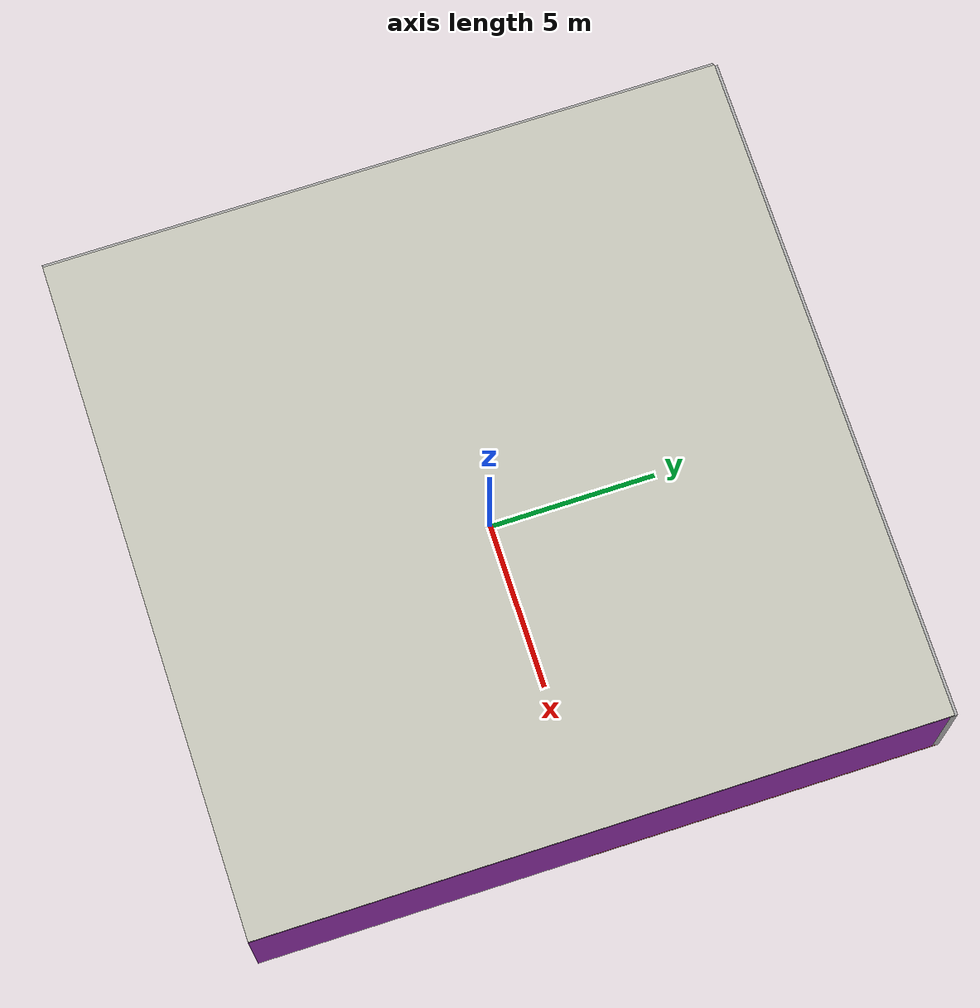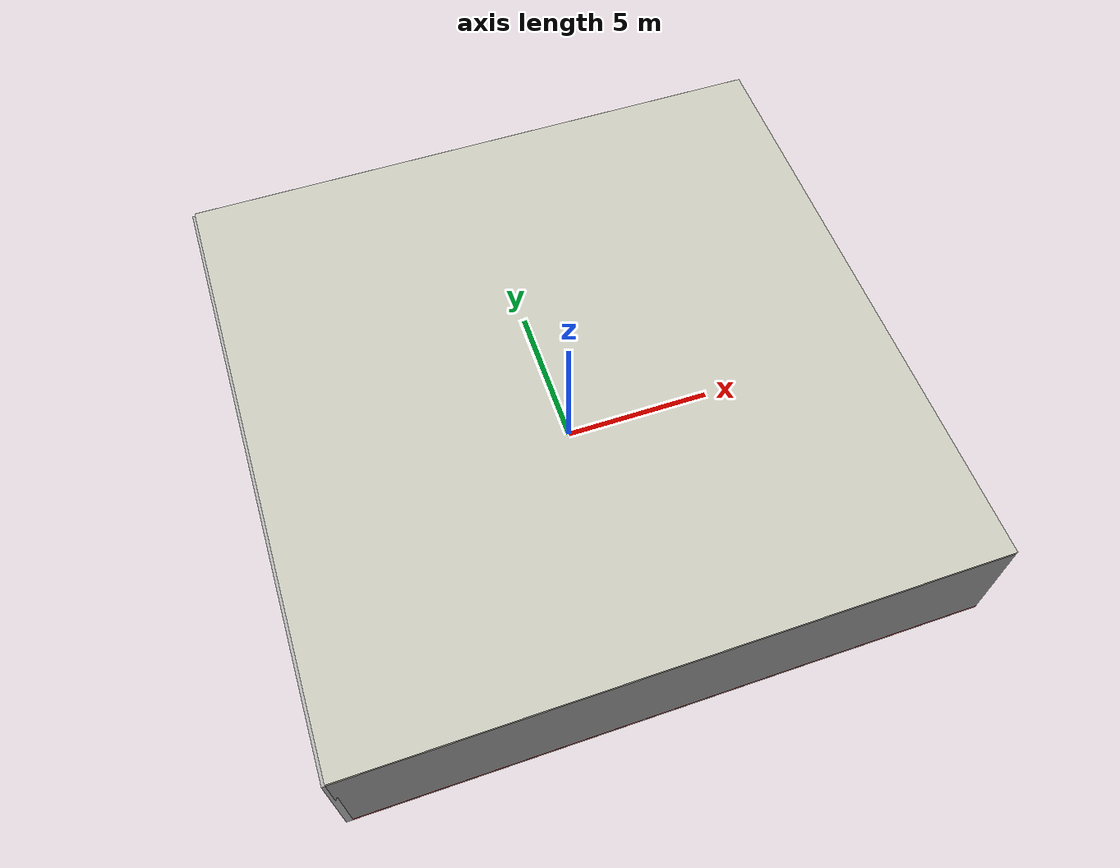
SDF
<sdf version="1.4">
 <world name="default">
  <physics type="ode">
   <max_step_size>0.001</max_step_size>
   <real_time_factor>1</real_time_factor>
   <real_time_update_rate>1000</real_time_update_rate>
   <gravity>0 0 -9.8</gravity>
  </physics>
  <scene><ambient>0.4 0.4 0.4 1</ambient><background>0.7 0.7 0.7 1</background><shadows>1</shadows></scene>
  <model name="Surrounding">
   <static>1</static>
   <link name="Ceiling">
    <collision name="Ceiling_Collision"><geometry><box><size>20 20 0.1</size></box></geometry></collision>
    <visual name="Ceiling_Visual">
     <geometry><box><size>20 20 0.1</size></box></geometry>
     <material>
      <script><uri>file://media/materials/scripts/gazebo.material</uri><name>Gazebo/PaintedWall</name></script>
     </material>
    </visual>
    <pose>0 0 4.05 0 0 0</pose>
   </link>
   <link name="Wall_South">
    <collision name="Wall_South_Collision">
     <geometry><box><size>20 0 4</size></box></geometry>
     <pose>0 0 2 0 -0 0</pose>
    </collision>
    <visual name="Wall_South_Visual">
     <pose>0 0 2 0 -0 0</pose>
     <geometry><box><size>20 0 4</size></box></geometry>
     <material>
      <script><uri>file://media/materials/scripts/gazebo.material</uri><name>Gazebo/GreyGradientSky</name></script>
     </material>
    </visual>
    <velocity_decay><linear>0</linear><angular>0</angular></velocity_decay>
    <pose>0 -10 0 0 -0 0</pose>
   </link>
   <link name="Wall_East">
    <collision name="Wall_21_Collision">
     <geometry><box><size>20 0 4</size></box></geometry>
     <pose>0 0 2 0 -0 0</pose>
    </collision>
    <visual name="Wall_21_Visual">
     <pose>0 0 2 0 -0 0</pose>
     <geometry><box><size>20 0 4</size></box></geometry>
     <material>
      <script><uri>file://media/materials/scripts/gazebo.material</uri><name>Gazebo/PurpleGlow</name></script>
     </material>
    </visual>
    <velocity_decay><linear>0</linear><angular>0</angular></velocity_decay>
    <pose>10 0 0 0 -0 1.5708</pose>
   </link>
   <link name="Wall_North">
    <collision name="Wall_22_Collision">
     <geometry><box><size>20 0.2 4</size></box></geometry>
     <pose>0 0 2 0 -0 0</pose>
    </collision>
    <visual name="Wall_22_Visual">
     <pose>0 0 2 0 -0 0</pose>
     <geometry><box><size>20 0.2 4</size></box></geometry>
     <material>
      <script><uri>file://media/materials/scripts/gazebo.material</uri><name>Gazebo/PioneerBody</name></script>
     </material>
    </visual>
    <velocity_decay><linear>0</linear><angular>0</angular></velocity_decay>
    <pose>0 10 0 0 -0 0</pose>
   </link>
   <link name="Wall_West">
    <collision name="Wall_23_Collision">
     <geometry><box><size>20 0.2 4</size></box></geometry>
     <pose>0 0 2 0 -0 0</pose>
    </collision>
    <visual name="Wall_23_Visual">
     <pose>0 0 2 0 -0 0</pose>
     <geometry><box><size>20 0.2 4</size></box></geometry>
     <material>
      <script><uri>file://media/materials/scripts/gazebo.material</uri><name>Gazebo/JointAnchor</name></script>
     </material>
    </visual>
    <velocity_decay><linear>0</linear><angular>0</angular></velocity_decay>
    <pose>-10 0 0 0 0 -1.5708</pose>
   </link>
   <link name="Ground_link">
    <collision name="collision">
     <pose>0 0 .05 0 -0 0</pose>
     <geometry><box><size>20 20 0.1</size></box></geometry>
    </collision>
    <visual name="visual">
     <pose>0 0 .05 0 -0 0</pose>
     <geometry><box><size>20 20 0.1</size></box></geometry>
     <material>
      <script><uri>file://media/materials/scripts/gazebo.material</uri><name>Gazebo/RedGlow</name></script>
     </material>
    </visual>
   </link>
   <static>1</static>
  </model>
  <spherical_coordinates>
   <surface_model>EARTH_WGS84</surface_model>
   <latitude_deg>0</latitude_deg>
   <longitude_deg>0</longitude_deg>
   <elevation>0</elevation>
   <heading_deg>0</heading_deg>
  </spherical_coordinates>
  <light name="lightball_0" type="diffuse">
   <diffuse>0.8 0.8 0.8 1</diffuse>
   <specular>0.2 0.2 0.2 1</specular>
   <attenuation>
    <range>100</range>
    <constant>0.7</constant>
    <linear>0.01</linear>
    <quadratic>0.001</quadratic>
   </attenuation>
   <direction>-0.5 0.1 -0.9</direction>
   <pose>6.60635475391 -5.00258158838 1.751798584 0 0 0</pose>
  </light>
  <light name="lightball_1" type="diffuse">
   <diffuse>0.8 0.8 0.8 1</diffuse>
   <specular>0.2 0.2 0.2 1</specular>
   <attenuation>
    <range>100</range>
    <constant>0.7</constant>
    <linear>0.01</linear>
    <quadratic>0.001</quadratic>
   </attenuation>
   <direction>-0.5 0.1 -0.9</direction>
   <pose>-7.86373573731 -9.62836530758 3.6028023357 0 0 0</pose>
  </light>
  <light name="lightball_2" type="diffuse">
   <diffuse>0.8 0.8 0.8 1</diffuse>
   <specular>0.2 0.2 0.2 1</specular>
   <attenuation>
    <range>100</range>
    <constant>0.7</constant>
    <linear>0.01</linear>
    <quadratic>0.001</quadratic>
   </attenuation>
   <direction>-0.5 0.1 -0.9</direction>
   <pose>-4.78816496217 -3.3347068833 2.57258109089 0 0 0</pose>
  </light>
  <light name="lightball_3" type="diffuse">
   <diffuse>0.8 0.8 0.8 1</diffuse>
   <specular>0.2 0.2 0.2 1</specular>
   <attenuation>
    <range>100</range>
    <constant>0.7</constant>
    <linear>0.01</linear>
    <quadratic>0.001</quadratic>
   </attenuation>
   <direction>-0.5 0.1 -0.9</direction>
   <pose>-8.34695572088 7.33924939166 1.12016808595 0 0 0</pose>
  </light>
  <light name="lightball_4" type="diffuse">
   <diffuse>0.8 0.8 0.8 1</diffuse>
   <specular>0.2 0.2 0.2 1</specular>
   <attenuation>
    <range>100</range>
    <constant>0.7</constant>
    <linear>0.01</linear>
    <quadratic>0.001</quadratic>
   </attenuation>
   <direction>-0.5 0.1 -0.9</direction>
   <pose>-4.65778533854 -6.97823269509 0.960225483785 0 0 0</pose>
  </light>
  <include>
   <uri>model://robocup_3Dsim_goal</uri>
   <pose>-8.19196555647 -2.15319882548 0 0 0 0.533606340603</pose>
  </include>
  <include><uri>model://table</uri><pose>-4.02301988383 1.4650184267 0 0 0 0.462547100685</pose></include>
  <include>
   <uri>model://textured_shapes</uri>
   <pose>-4.08725723804 7.75586757394 0 0 0 1.85417649179</pose>
  </include>
  <include><uri>model://cabinet</uri><pose>3.7619804313 -3.78085562646 0 0 0 2.74332134505</pose></include>
  <include>
   <uri>model://construction_cone</uri>
   <pose>8.13602547702 8.02806228766 0 0 0 2.10772807638</pose>
  </include>
 </world>
</sdf>

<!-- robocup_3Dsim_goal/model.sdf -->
<sdf version="1.5">
  <model name="robocup_3d_goal">
    <static>true</static>
    <link name="left_post">
      <pose>0 1.05 0.45 0 0 0</pose>
      <collision name="collision">
        <geometry>
          <cylinder>
            <radius>0.05</radius>
            <length>0.9</length>
          </cylinder>
        </geometry>
      </collision>
      <visual name="visual">
        <geometry>
          <cylinder>
            <radius>0.05</radius>
            <length>0.9</length>
          </cylinder>
        </geometry>
        <material>
          <script>
            <uri>file://media/materials/scripts/gazebo.material</uri>
            <name>Gazebo/ZincYellow</name>
          </script>
        </material>
      </visual>
    </link>
    <link name="left_support_horiz_lower">
      <pose>0.30 1.05 0.01 0 0 0</pose>
      <collision name="collision">
        <geometry>
          <box>
            <size>0.50 0.02 0.02</size>
          </box>
        </geometry>
      </collision>
      <visual name="visual">
        <geometry>
          <box>
            <size>0.50 0.02 0.02</size>
          </box>
        </geometry>
        <material>
          <script>
            <uri>file://media/materials/scripts/gazebo.material</uri>
            <name>Gazebo/White</name>
          </script>
        </material>
      </visual>
    </link>
    <link name="left_support_horiz_upper">
      <pose>0.30 1.05 0.79 0 0 0</pose>
      <collision name="collision">
        <geometry>
          <box>
            <size>0.50 0.02 0.02</size>
          </box>
        </geometry>
      </collision>
      <visual name="visual">
        <geometry>
          <box>
            <size>0.50 0.02 0.02</size>
          </box>
        </geometry>
        <material>
          <script>
            <uri>file://media/materials/scripts/gazebo.material</uri>
            <name>Gazebo/White</name>
          </script>
        </material>
      </visual>
    </link>
    <link name="left_support_vertical">
      <pose>0.56 1.05 0.4 0 1.5708 0</pose>
      <collision name="collision">
        <geometry>
          <box>
            <size>0.80 0.02 0.02</size>
          </box>
        </geometry>
      </collision>
      <visual name="visual">
        <geometry>
          <box>
            <size>0.80 0.02 0.02</size>
          </box>
        </geometry>
        <material>
          <script>
            <uri>file://media/materials/scripts/gazebo.material</uri>
            <name>Gazebo/White</name>
          </script>
        </material>
      </visual>
    </link>
    <link name="right_support_horiz_lower">
      <pose>0.30 -1.05 0.01 0 0 0</pose>
      <collision name="collision">
        <geometry>
          <box>
            <size>0.50 0.02 0.02</size>
          </box>
        </geometry>
      </collision>
      <visual name="visual">
        <geometry>
          <box>
            <size>0.50 0.02 0.02</size>
          </box>
        </geometry>
        <material>
          <script>
            <uri>file://media/materials/scripts/gazebo.material</uri>
            <name>Gazebo/White</name>
          </script>
        </material>
      </visual>
    </link>
    <link name="right_support_horiz_upper">
      <pose>0.30 -1.05 0.79 0 0 0</pose>
      <collision name="collision">
        <geometry>
          <box>
            <size>0.50 0.02 0.02</size>
          </box>
        </geometry>
      </collision>
      <visual name="visual">
        <geometry>
          <box>
            <size>0.50 0.02 0.02</size>
          </box>
        </geometry>
        <material>
          <script>
            <uri>file://media/materials/scripts/gazebo.material</uri>
            <name>Gazebo/White</name>
          </script>
        </material>
      </visual>
    </link>
    <link name="right_support_vertical">
      <pose>0.56 -1.05 0.4 0 1.5708 0</pose>
      <collision name="collision">
        <geometry>
          <box>
            <size>0.80 0.02 0.02</size>
          </box>
        </geometry>
      </collision>
      <visual name="visual">
        <geometry>
          <box>
            <size>0.80 0.02 0.02</size>
          </box>
        </geometry>
        <material>
          <script>
            <uri>file://media/materials/scripts/gazebo.material</uri>
            <name>Gazebo/White</name>
          </script>
        </material>
      </visual>
    </link>
    <link name="center_support_horiz_lower">
      <pose>0.56 0 0.01 0 1.5708 0</pose>
      <collision name="collision">
        <geometry>
          <box>
            <size>0.02 2.08 0.02</size>
          </box>
        </geometry>
      </collision>
      <visual name="visual">
        <geometry>
          <box>
            <size>0.02 2.08 0.02</size>
          </box>
        </geometry>
        <material>
          <script>
            <uri>file://media/materials/scripts/gazebo.material</uri>
            <name>Gazebo/White</name>
          </script>
        </material>
      </visual>
    </link>
    <link name="center_support_horiz_upper">
      <pose>0.56 0 0.79 0 1.5708 0</pose>
      <collision name="collision">
        <geometry>
          <box>
            <size>0.02 2.08 0.02</size>
          </box>
        </geometry>
      </collision>
      <visual name="visual">
        <geometry>
          <box>
            <size>0.02 2.08 0.02</size>
          </box>
        </geometry>
        <material>
          <script>
            <uri>file://media/materials/scripts/gazebo.material</uri>
            <name>Gazebo/White</name>
          </script>
        </material>
      </visual>
    </link>
    <link name="right_post">
      <pose>0 -1.05 0.45 0 0 0</pose>
      <collision name="collision">
        <geometry>
          <cylinder>
            <radius>0.05</radius>
            <length>0.9</length>
          </cylinder>
        </geometry>
      </collision>
      <visual name="visual">
        <geometry>
          <cylinder>
            <radius>0.05</radius>
            <length>0.9</length>
          </cylinder>
        </geometry>
        <material>
          <script>
            <uri>file://media/materials/scripts/gazebo.material</uri>
            <name>Gazebo/ZincYellow</name>
          </script>
        </material>
      </visual>
    </link>
    <link name="crossbar">
      <pose>0 0 0.85 1.57 1.57 0</pose>
      <collision name="collision">
        <geometry>
          <cylinder>
            <radius>0.05</radius>
            <length>2.0</length>
          </cylinder>
        </geometry>
      </collision>
      <visual name="visual">
        <geometry>
          <cylinder>
            <radius>0.05</radius>
            <length>2.0</length>
          </cylinder>
        </geometry>
        <material>
          <script>
            <uri>file://media/materials/scripts/gazebo.material</uri>
            <name>Gazebo/ZincYellow</name>
          </script>
        </material>
      </visual>
    </link>
    <link name="center_net">
      <pose>0.56 0 0.40 0 0 0</pose>
      <collision name="collision">
        <geometry>
          <box>
            <size>0.01 2.1 0.80</size>
          </box>
        </geometry>
      </collision>
      <visual name="visual">
        <geometry>
          <box>
            <size>0.01 2.1 0.80</size>
          </box>
        </geometry>
        <material>
          <script>
            <uri>model://../model_source/models/robocup09_spl_field/materials/scripts/</uri>
            <uri>model://../model_source/models/robocup09_spl_field/materials/textures/</uri>
            <name>RoboCup/Net</name>
          </script>
        </material>
      </visual>
    </link>
    <link name="left_net">
      <pose>0.30 1.05 0.40 0 0 0</pose>
      <collision name="collision">
        <geometry>
          <box>
            <size>0.50 0.01 0.76</size>
          </box>
        </geometry>
      </collision>
      <visual name="visual">
        <geometry>
          <box>
            <size>0.50 0.01 0.76</size>
          </box>
        </geometry>
        <material>
          <script>
            <uri>model://../model_source/models/robocup09_spl_field/materials/scripts/</uri>
            <uri>model://../model_source/models/robocup09_spl_field/materials/textures/</uri>
            <name>RoboCup/Net</name>
          </script>
        </material>
      </visual>
    </link>
    <link name="right_net">
      <pose>0.30 -1.05 0.40 0 0 0</pose>
      <collision name="collision">
        <geometry>
          <box>
            <size>0.50 0.01 0.76</size>
          </box>
        </geometry>
      </collision>
      <visual name="visual">
        <geometry>
          <box>
            <size>0.50 0.01 0.76</size>
          </box>
        </geometry>
        <material>
          <script>
            <uri>model://../model_source/models/robocup09_spl_field/materials/scripts/</uri>
            <uri>model://../model_source/models/robocup09_spl_field/materials/textures/</uri>
            <name>RoboCup/Net</name>
          </script>
        </material>
      </visual>
    </link>
  </model>
</sdf>

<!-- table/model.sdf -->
<sdf version="1.5">
  <model name="table">
    <static>true</static>
    <link name="link">
      <collision name="surface">
        <pose>0 0 1.0 0 0 0</pose>
        <geometry>
          <box>
            <size>1.5 0.8 0.03</size>
          </box>
        </geometry>
        <surface>
          <friction>
            <ode>
              <mu>0.6</mu>
              <mu2>0.6</mu2>
            </ode>
          </friction>
        </surface>
      </collision>
      <visual name="visual1">
        <pose>0 0 1.0 0 0 0</pose>
        <geometry>
          <box>
            <size>1.5 0.8 0.03</size>
          </box>
        </geometry>
        <material>
          <script>
            <uri>model://media/materials/scripts/gazebo.material</uri>
            <name>Gazebo/Wood</name>
          </script>
        </material>
      </visual>
      <collision name="front_left_leg">
        <pose>0.68 0.38 0.5 0 0 0</pose>
        <geometry>
          <cylinder>
            <radius>0.02</radius>
            <length>1.0</length>
          </cylinder>
        </geometry>
      </collision>
      <visual name="front_left_leg">
        <pose>0.68 0.38 0.5 0 0 0</pose>
        <geometry>
          <cylinder>
            <radius>0.02</radius>
            <length>1.0</length>
          </cylinder>
        </geometry>
        <material>
          <script>
            <uri>model://media/materials/scripts/gazebo.material</uri>
            <name>Gazebo/Grey</name>
          </script>
        </material>
      </visual>
      <collision name="front_right_leg">
        <pose>0.68 -0.38 0.5 0 0 0</pose>
        <geometry>
          <cylinder>
            <radius>0.02</radius>
            <length>1.0</length>
          </cylinder>
        </geometry>
      </collision>
      <visual name="front_right_leg">
        <pose>0.68 -0.38 0.5 0 0 0</pose>
        <geometry>
          <cylinder>
            <radius>0.02</radius>
            <length>1.0</length>
          </cylinder>
        </geometry>
        <material>
          <script>
            <uri>model://media/materials/scripts/gazebo.material</uri>
            <name>Gazebo/Grey</name>
          </script>
        </material>
      </visual>
      <collision name="back_right_leg">
        <pose>-0.68 -0.38 0.5 0 0 0</pose>
        <geometry>
          <cylinder>
            <radius>0.02</radius>
            <length>1.0</length>
          </cylinder>
        </geometry>
      </collision>
      <visual name="back_right_leg">
        <pose>-0.68 -0.38 0.5 0 0 0</pose>
        <geometry>
          <cylinder>
            <radius>0.02</radius>
            <length>1.0</length>
          </cylinder>
        </geometry>
        <material>
          <script>
            <uri>model://media/materials/scripts/gazebo.material</uri>
            <name>Gazebo/Grey</name>
          </script>
        </material>
      </visual>
      <collision name="back_left_leg">
        <pose>-0.68 0.38 0.5 0 0 0</pose>
        <geometry>
          <cylinder>
            <radius>0.02</radius>
            <length>1.0</length>
          </cylinder>
        </geometry>
      </collision>
      <visual name="back_left_leg">
        <pose>-0.68 0.38 0.5 0 0 0</pose>
        <geometry>
          <cylinder>
            <radius>0.02</radius>
            <length>1.0</length>
          </cylinder>
        </geometry>
        <material>
          <script>
            <uri>model://media/materials/scripts/gazebo.material</uri>
            <name>Gazebo/Grey</name>
          </script>
        </material>
      </visual>
    </link>
  </model>
</sdf>

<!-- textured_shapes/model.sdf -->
<sdf version="1.6">
  <model name="textured_shapes">
    <pose>0 0 0.5 0 0 0</pose>
    <link name="box">
      <pose>0 -1.5 0 0 0 0</pose>
      <collision name="collision">
        <geometry>
          <box>
            <size>1 1 1</size>
          </box>
        </geometry>
      </collision>
      <visual name="visual">
        <geometry>
          <box>
            <size>1 1 1</size>
          </box>
        </geometry>
        <material>
          <script>
            <uri>model://../model_source/models/textured_shapes/materials/scripts</uri>
            <uri>model://../model_source/models/textured_shapes/materials/textures</uri>
            <name>TexturedShape/Squares</name>
          </script>
        </material>
      </visual>
    </link>
    <link name="sphere">
      <collision name="collision">
        <geometry>
          <sphere>
            <radius>0.5</radius>
          </sphere>
        </geometry>
      </collision>
      <visual name="visual">
        <geometry>
          <sphere>
            <radius>0.5</radius>
          </sphere>
        </geometry>
        <material>
          <script>
            <uri>model://../model_source/models/textured_shapes/materials/scripts</uri>
            <uri>model://../model_source/models/textured_shapes/materials/textures</uri>
            <name>TexturedShape/Squares</name>
          </script>
        </material>
      </visual>
    </link>
    <link name="cylinder">
      <pose>0 1.5 0 0 0 0</pose>
      <collision name="collision">
        <geometry>
          <cylinder>
            <radius>0.5</radius>
            <length>1</length>
          </cylinder>
        </geometry>
      </collision>
      <visual name="visual">
        <geometry>
          <cylinder>
            <radius>0.5</radius>
            <length>1</length>
          </cylinder>
        </geometry>
        <material>
          <script>
            <uri>model://../model_source/models/textured_shapes/materials/scripts</uri>
            <uri>model://../model_source/models/textured_shapes/materials/textures</uri>
            <name>TexturedShape/Squares</name>
          </script>
        </material>
      </visual>
    </link>
  </model>
</sdf>

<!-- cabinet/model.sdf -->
<sdf version="1.5">
  <model name="cabinet">
    <static>true</static>
    <link name="cabinet_bottom_plate">
      <inertial>
        <pose>0 0 -1 0 0 0</pose>
        <inertia>
          <ixx>2.050000</ixx>
          <ixy>0</ixy>
          <ixz>0</ixz>
          <iyy>2.050000</iyy>
          <iyz>0</iyz>
          <izz>2.050000</izz>
        </inertia>
        <mass>25.000000</mass>
      </inertial>
      <collision name="cabinet_bottom_plate_geom">
        <pose>0 0 0.010000 0 0 0</pose>
        <geometry>
          <box>
            <size>0.450000 0.450000 0.020000</size>
          </box>
        </geometry>
      </collision>
      <visual name="cabinet_bottom_plate_geom_visual">
        <pose>0 0 0.010000 0 0 0</pose>
        <geometry>
          <box>
            <size>0.450000 0.450000 0.020000</size>
          </box>
        </geometry>
        <material>
          <script>
            <uri>model://media/materials/scripts/gazebo.material</uri>
            <name>Gazebo/Wood</name>
          </script>
        </material>
      </visual>
      <collision name="cabinet_bottom_plate_geom_cabinet_back_plate">
        <pose>0.235000 0 0.510000 0 0 0</pose>
        <geometry>
          <box>
            <size>0.020000 0.450000 1.020000</size>
          </box>
        </geometry>
      </collision>
      <visual name="cabinet_bottom_plate_geom_cabinet_back_plate_visual">
        <pose>0.235000 0 0.510000 0 0 0</pose>
        <geometry>
          <box>
            <size>0.020000 0.450000 1.020000</size>
          </box>
        </geometry>
        <material>
          <script>
            <uri>model://media/materials/scripts/gazebo.material</uri>
            <name>Gazebo/Wood</name>
          </script>
        </material>
      </visual>
      <collision name="cabinet_bottom_plate_geom_cabinet_left_plate">
        <pose>0 0.235000 0.510000 0 0 0</pose>
        <geometry>
          <box>
            <size>0.450000 0.020000 1.020000</size>
          </box>
        </geometry>
      </collision>
      <visual name="cabinet_bottom_plate_geom_cabinet_left_plate_visual">
        <pose>0 0.235000 0.510000 0 0 0</pose>
        <geometry>
          <box>
            <size>0.450000 0.020000 1.020000</size>
          </box>
        </geometry>
        <material>
          <script>
            <uri>model://media/materials/scripts/gazebo.material</uri>
            <name>Gazebo/Wood</name>
          </script>
        </material>
      </visual>
      <collision name="cabinet_bottom_plate_geom_cabinet_middle_plate">
        <pose>0 0 0.510000 0 0 0</pose>
        <geometry>
          <box>
            <size>0.450000 0.450000 0.020000</size>
          </box>
        </geometry>
      </collision>
      <visual name="cabinet_bottom_plate_geom_cabinet_middle_plate_visual">
        <pose>0 0 0.510000 0 0 0</pose>
        <geometry>
          <box>
            <size>0.450000 0.450000 0.020000</size>
          </box>
        </geometry>
        <material>
          <script>
            <uri>model://media/materials/scripts/gazebo.material</uri>
            <name>Gazebo/Wood</name>
          </script>
        </material>
      </visual>
      <collision name="cabinet_bottom_plate_geom_cabinet_right_plate">
        <pose>0 -0.235000 0.510000 0 0 0</pose>
        <geometry>
          <box>
            <size>0.450000 0.020000 1.020000</size>
          </box>
        </geometry>
      </collision>
      <visual name="cabinet_bottom_plate_geom_cabinet_right_plate_visual">
        <pose>0 -0.235000 0.510000 0 0 0</pose>
        <geometry>
          <box>
            <size>0.450000 0.020000 1.020000</size>
          </box>
        </geometry>
        <material>
          <script>
            <uri>model://media/materials/scripts/gazebo.material</uri>
            <name>Gazebo/Wood</name>
          </script>
        </material>
      </visual>
      <collision name="cabinet_bottom_plate_geom_cabinet_top_plate">
        <pose>0 0 1.010000 0 0 0</pose>
        <geometry>
          <box>
            <size>0.450000 0.450000 0.020000</size>
          </box>
        </geometry>
      </collision>
      <visual name="cabinet_bottom_plate_geom_cabinet_top_plate_visual">
        <pose>0 0 1.010000 0 0 0</pose>
        <geometry>
          <box>
            <size>0.450000 0.450000 0.020000</size>
          </box>
        </geometry>
        <material>
          <script>
            <uri>model://media/materials/scripts/gazebo.material</uri>
            <name>Gazebo/Wood</name>
          </script>
        </material>
      </visual>
    </link>
  </model>
</sdf>

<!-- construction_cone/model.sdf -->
<sdf version="1.5">
  <model name="Construction Cone">
    <link name="link">
      <collision name="collision">
        <geometry>
          <mesh>
            <scale>10 10 10</scale>
            <uri>file://isr-testbed/construction_cone/meshes/construction_cone.dae</uri>
          </mesh>
        </geometry>
      </collision>
      <visual name="visual">
        <geometry>
          <mesh>
            <scale>10 10 10</scale>
            <uri>file://isr-testbed/construction_cone/meshes/construction_cone.dae</uri>
          </mesh>
        </geometry>
      </visual>
    </link>
  </model>
</sdf>
